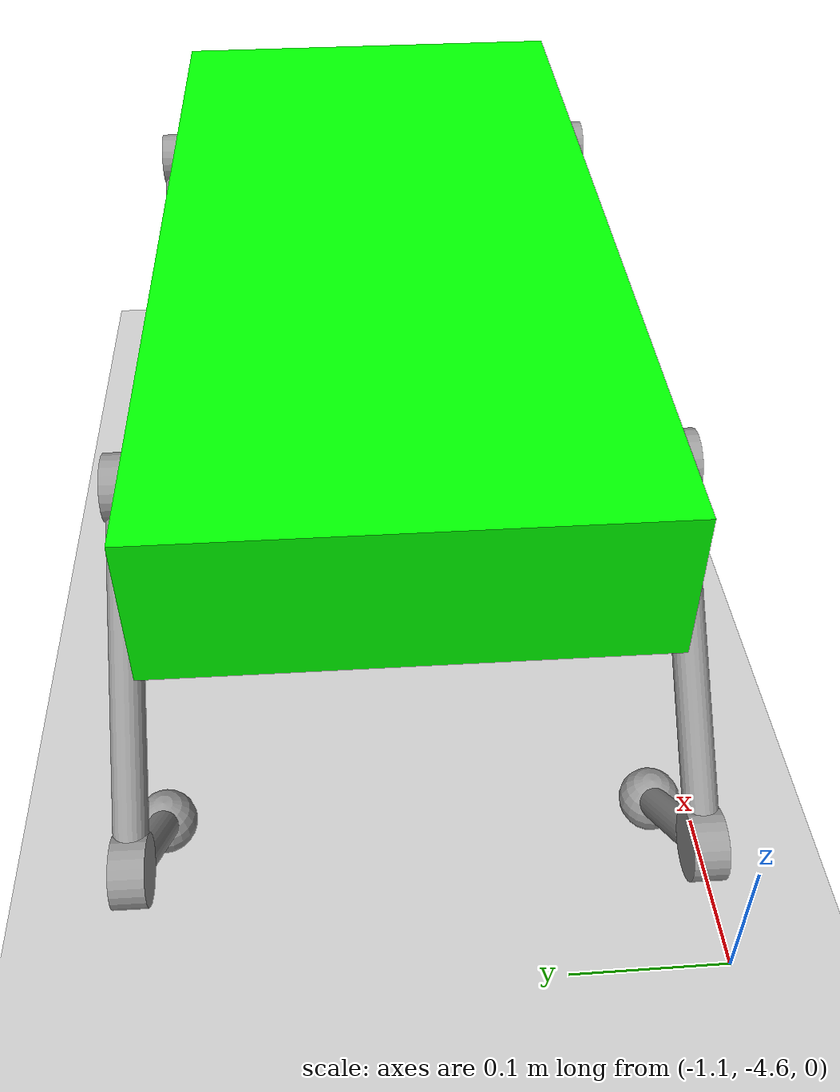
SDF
<sdf version="1.6">
 <world name="default">
  <model name="ground_plane">
   <static>1</static>
   <link name="link">
    <collision name="collision">
     <geometry><plane><normal>0 0 1</normal><size>100 100</size></plane></geometry>
     <surface><friction><ode><mu>100</mu><mu2>50</mu2></ode></friction></surface>
    </collision>
    <visual name="visual">
     <cast_shadows>0</cast_shadows>
     <geometry><plane><normal>0 0 1</normal><size>100 100</size></plane></geometry>
     <material>
      <script><uri>file://media/materials/scripts/gazebo.material</uri><name>Gazebo/Grey</name></script>
     </material>
    </visual>
   </link>
  </model>
  <model name="robodoggi">
   <link name="link_0">
    <pose>3.29895 2.116 0.505494 0 -0 0</pose>
    <inertial>
     <mass>1</mass>
     <inertia>
      <ixx>0.166667</ixx>
      <ixy>0</ixy>
      <ixz>0</ixz>
      <iyy>0.166667</iyy>
      <iyz>0</iyz>
      <izz>0.166667</izz>
     </inertia>
    </inertial>
    <visual name="visual">
     <geometry><box><size>0.6 0.3 0.1</size></box></geometry>
     <material>
      <lighting>1</lighting>
      <script><uri>file://media/materials/scripts/gazebo.material</uri><name>Gazebo/Grey</name></script>
      <shader type="pixel"><normal_map>__default__</normal_map></shader>
      <ambient>0 1 0 1</ambient>
      <diffuse>0.7 0.7 0.7 1</diffuse>
      <specular>0.01 0.01 0.01 1</specular>
      <emissive>0 0 0 1</emissive>
     </material>
    </visual>
    <collision name="collision">
     <geometry><box><size>0.6 0.3 0.1</size></box></geometry>
     <surface>
      <friction>
       <ode><mu>1</mu><mu2>1</mu2><fdir1>0 0 0</fdir1><slip1>0</slip1><slip2>0</slip2></ode>
       <torsional>
        <coefficient>1</coefficient>
        <patch_radius>0</patch_radius>
        <surface_radius>0</surface_radius>
        <use_patch_radius>1</use_patch_radius>
        <ode><slip>0</slip></ode>
       </torsional>
      </friction>
      <bounce><restitution_coefficient>0</restitution_coefficient><threshold>1e+06</threshold></bounce>
      <contact>
       <collide_without_contact>0</collide_without_contact>
       <collide_without_contact_bitmask>1</collide_without_contact_bitmask>
       <collide_bitmask>1</collide_bitmask>
       <ode>
        <soft_cfm>0</soft_cfm>
        <soft_erp>0.2</soft_erp>
        <kp>1e+13</kp>
        <kd>1</kd>
        <max_vel>0.01</max_vel>
        <min_depth>0</min_depth>
       </ode>
       <bullet>
        <split_impulse>1</split_impulse>
        <split_impulse_penetration_threshold>-0.01</split_impulse_penetration_threshold>
        <soft_cfm>0</soft_cfm>
        <soft_erp>0.2</soft_erp>
        <kp>1e+13</kp>
        <kd>1</kd>
       </bullet>
      </contact>
     </surface>
    </collision>
   </link>
   <link name="link_1">
    <pose>3.09895 1.956 0.505494 1.5708 -0 0</pose>
    <inertial>
     <mass>1</mass>
     <inertia><ixx>0.145833</ixx><ixy>0</ixy><ixz>0</ixz><iyy>0.145833</iyy><iyz>0</iyz><izz>0.125</izz></inertia>
    </inertial>
    <visual name="visual">
     <geometry><cylinder><radius>0.02</radius><length>0.02</length></cylinder></geometry>
     <material>
      <lighting>1</lighting>
      <script><uri>file://media/materials/scripts/gazebo.material</uri><name>Gazebo/Grey</name></script>
      <shader type="pixel"><normal_map>__default__</normal_map></shader>
      <ambient>0.3 0.3 0.3 1</ambient>
      <diffuse>0.7 0.7 0.7 1</diffuse>
      <specular>0.01 0.01 0.01 1</specular>
      <emissive>0 0 0 1</emissive>
     </material>
    </visual>
    <collision name="collision">
     <geometry><cylinder><radius>0.02</radius><length>0.02</length></cylinder></geometry>
     <surface>
      <friction>
       <ode><mu>1</mu><mu2>1</mu2><fdir1>0 0 0</fdir1><slip1>0</slip1><slip2>0</slip2></ode>
       <torsional>
        <coefficient>1</coefficient>
        <patch_radius>0</patch_radius>
        <surface_radius>0</surface_radius>
        <use_patch_radius>1</use_patch_radius>
        <ode><slip>0</slip></ode>
       </torsional>
      </friction>
      <bounce><restitution_coefficient>0</restitution_coefficient><threshold>1e+06</threshold></bounce>
      <contact>
       <collide_without_contact>0</collide_without_contact>
       <collide_without_contact_bitmask>1</collide_without_contact_bitmask>
       <collide_bitmask>1</collide_bitmask>
       <ode>
        <soft_cfm>0</soft_cfm>
        <soft_erp>0.2</soft_erp>
        <kp>1e+13</kp>
        <kd>1</kd>
        <max_vel>0.01</max_vel>
        <min_depth>0</min_depth>
       </ode>
       <bullet>
        <split_impulse>1</split_impulse>
        <split_impulse_penetration_threshold>-0.01</split_impulse_penetration_threshold>
        <soft_cfm>0</soft_cfm>
        <soft_erp>0.2</soft_erp>
        <kp>1e+13</kp>
        <kd>1</kd>
       </bullet>
      </contact>
     </surface>
    </collision>
   </link>
   <link name="link_1_clone">
    <pose>2.94624 1.956 0.352783 1.5708 -0 0</pose>
    <inertial>
     <mass>1</mass>
     <inertia><ixx>0.145833</ixx><ixy>0</ixy><ixz>0</ixz><iyy>0.145833</iyy><iyz>0</iyz><izz>0.125</izz></inertia>
    </inertial>
    <visual name="visual">
     <geometry><cylinder><radius>0.02</radius><length>0.02</length></cylinder></geometry>
     <material>
      <lighting>1</lighting>
      <script><uri>file://media/materials/scripts/gazebo.material</uri><name>Gazebo/Grey</name></script>
      <shader type="pixel"><normal_map>__default__</normal_map></shader>
      <ambient>0.3 0.3 0.3 1</ambient>
      <diffuse>0.7 0.7 0.7 1</diffuse>
      <specular>0.01 0.01 0.01 1</specular>
      <emissive>0 0 0 1</emissive>
     </material>
    </visual>
    <collision name="collision">
     <geometry><cylinder><radius>0.02</radius><length>0.02</length></cylinder></geometry>
     <surface>
      <friction>
       <ode><mu>1</mu><mu2>1</mu2><fdir1>0 0 0</fdir1><slip1>0</slip1><slip2>0</slip2></ode>
       <torsional>
        <coefficient>1</coefficient>
        <patch_radius>0</patch_radius>
        <surface_radius>0</surface_radius>
        <use_patch_radius>1</use_patch_radius>
        <ode><slip>0</slip></ode>
       </torsional>
      </friction>
      <bounce><restitution_coefficient>0</restitution_coefficient><threshold>1e+06</threshold></bounce>
      <contact>
       <collide_without_contact>0</collide_without_contact>
       <collide_without_contact_bitmask>1</collide_without_contact_bitmask>
       <collide_bitmask>1</collide_bitmask>
       <ode>
        <soft_cfm>0</soft_cfm>
        <soft_erp>0.2</soft_erp>
        <kp>1e+13</kp>
        <kd>1</kd>
        <max_vel>0.01</max_vel>
        <min_depth>0</min_depth>
       </ode>
       <bullet>
        <split_impulse>1</split_impulse>
        <split_impulse_penetration_threshold>-0.01</split_impulse_penetration_threshold>
        <soft_cfm>0</soft_cfm>
        <soft_erp>0.2</soft_erp>
        <kp>1e+13</kp>
        <kd>1</kd>
       </bullet>
      </contact>
     </surface>
    </collision>
   </link>
   <link name="link_1_clone_0">
    <pose>3.49895 1.956 0.505494 1.5708 -0 0</pose>
    <inertial>
     <mass>1</mass>
     <inertia><ixx>0.145833</ixx><ixy>0</ixy><ixz>0</ixz><iyy>0.145833</iyy><iyz>0</iyz><izz>0.125</izz></inertia>
    </inertial>
    <visual name="visual">
     <geometry><cylinder><radius>0.02</radius><length>0.02</length></cylinder></geometry>
     <material>
      <lighting>1</lighting>
      <script><uri>file://media/materials/scripts/gazebo.material</uri><name>Gazebo/Grey</name></script>
      <shader type="pixel"><normal_map>__default__</normal_map></shader>
      <ambient>0.3 0.3 0.3 1</ambient>
      <diffuse>0.7 0.7 0.7 1</diffuse>
      <specular>0.01 0.01 0.01 1</specular>
      <emissive>0 0 0 1</emissive>
     </material>
    </visual>
    <collision name="collision">
     <geometry><cylinder><radius>0.02</radius><length>0.02</length></cylinder></geometry>
     <surface>
      <friction>
       <ode><mu>1</mu><mu2>1</mu2><fdir1>0 0 0</fdir1><slip1>0</slip1><slip2>0</slip2></ode>
       <torsional>
        <coefficient>1</coefficient>
        <patch_radius>0</patch_radius>
        <surface_radius>0</surface_radius>
        <use_patch_radius>1</use_patch_radius>
        <ode><slip>0</slip></ode>
       </torsional>
      </friction>
      <bounce><restitution_coefficient>0</restitution_coefficient><threshold>1e+06</threshold></bounce>
      <contact>
       <collide_without_contact>0</collide_without_contact>
       <collide_without_contact_bitmask>1</collide_without_contact_bitmask>
       <collide_bitmask>1</collide_bitmask>
       <ode>
        <soft_cfm>0</soft_cfm>
        <soft_erp>0.2</soft_erp>
        <kp>1e+13</kp>
        <kd>1</kd>
        <max_vel>0.01</max_vel>
        <min_depth>0</min_depth>
       </ode>
       <bullet>
        <split_impulse>1</split_impulse>
        <split_impulse_penetration_threshold>-0.01</split_impulse_penetration_threshold>
        <soft_cfm>0</soft_cfm>
        <soft_erp>0.2</soft_erp>
        <kp>1e+13</kp>
        <kd>1</kd>
       </bullet>
      </contact>
     </surface>
    </collision>
   </link>
   <link name="link_1_clone_0_clone">
    <pose>3.49895 2.27601 0.505494 1.5708 -0 0</pose>
    <inertial>
     <mass>1</mass>
     <inertia><ixx>0.145833</ixx><ixy>0</ixy><ixz>0</ixz><iyy>0.145833</iyy><iyz>0</iyz><izz>0.125</izz></inertia>
    </inertial>
    <visual name="visual">
     <geometry><cylinder><radius>0.02</radius><length>0.02</length></cylinder></geometry>
     <material>
      <lighting>1</lighting>
      <script><uri>file://media/materials/scripts/gazebo.material</uri><name>Gazebo/Grey</name></script>
      <shader type="pixel"><normal_map>__default__</normal_map></shader>
      <ambient>0.3 0.3 0.3 1</ambient>
      <diffuse>0.7 0.7 0.7 1</diffuse>
      <specular>0.01 0.01 0.01 1</specular>
      <emissive>0 0 0 1</emissive>
     </material>
    </visual>
    <collision name="collision">
     <geometry><cylinder><radius>0.02</radius><length>0.02</length></cylinder></geometry>
     <surface>
      <friction>
       <ode><mu>1</mu><mu2>1</mu2><fdir1>0 0 0</fdir1><slip1>0</slip1><slip2>0</slip2></ode>
       <torsional>
        <coefficient>1</coefficient>
        <patch_radius>0</patch_radius>
        <surface_radius>0</surface_radius>
        <use_patch_radius>1</use_patch_radius>
        <ode><slip>0</slip></ode>
       </torsional>
      </friction>
      <bounce><restitution_coefficient>0</restitution_coefficient><threshold>1e+06</threshold></bounce>
      <contact>
       <collide_without_contact>0</collide_without_contact>
       <collide_without_contact_bitmask>1</collide_without_contact_bitmask>
       <collide_bitmask>1</collide_bitmask>
       <ode>
        <soft_cfm>0</soft_cfm>
        <soft_erp>0.2</soft_erp>
        <kp>1e+13</kp>
        <kd>1</kd>
        <max_vel>0.01</max_vel>
        <min_depth>0</min_depth>
       </ode>
       <bullet>
        <split_impulse>1</split_impulse>
        <split_impulse_penetration_threshold>-0.01</split_impulse_penetration_threshold>
        <soft_cfm>0</soft_cfm>
        <soft_erp>0.2</soft_erp>
        <kp>1e+13</kp>
        <kd>1</kd>
       </bullet>
      </contact>
     </surface>
    </collision>
   </link>
   <link name="link_1_clone_0_clone_clone">
    <pose>3.34824 2.27601 0.354783 1.5708 -0 0</pose>
    <inertial>
     <mass>1</mass>
     <inertia><ixx>0.145833</ixx><ixy>0</ixy><ixz>0</ixz><iyy>0.145833</iyy><iyz>0</iyz><izz>0.125</izz></inertia>
    </inertial>
    <visual name="visual">
     <geometry><cylinder><radius>0.02</radius><length>0.02</length></cylinder></geometry>
     <material>
      <lighting>1</lighting>
      <script><uri>file://media/materials/scripts/gazebo.material</uri><name>Gazebo/Grey</name></script>
      <shader type="pixel"><normal_map>__default__</normal_map></shader>
      <ambient>0.3 0.3 0.3 1</ambient>
      <diffuse>0.7 0.7 0.7 1</diffuse>
      <specular>0.01 0.01 0.01 1</specular>
      <emissive>0 0 0 1</emissive>
     </material>
    </visual>
    <collision name="collision">
     <geometry><cylinder><radius>0.02</radius><length>0.02</length></cylinder></geometry>
     <surface>
      <friction>
       <ode><mu>1</mu><mu2>1</mu2><fdir1>0 0 0</fdir1><slip1>0</slip1><slip2>0</slip2></ode>
       <torsional>
        <coefficient>1</coefficient>
        <patch_radius>0</patch_radius>
        <surface_radius>0</surface_radius>
        <use_patch_radius>1</use_patch_radius>
        <ode><slip>0</slip></ode>
       </torsional>
      </friction>
      <bounce><restitution_coefficient>0</restitution_coefficient><threshold>1e+06</threshold></bounce>
      <contact>
       <collide_without_contact>0</collide_without_contact>
       <collide_without_contact_bitmask>1</collide_without_contact_bitmask>
       <collide_bitmask>1</collide_bitmask>
       <ode>
        <soft_cfm>0</soft_cfm>
        <soft_erp>0.2</soft_erp>
        <kp>1e+13</kp>
        <kd>1</kd>
        <max_vel>0.01</max_vel>
        <min_depth>0</min_depth>
       </ode>
       <bullet>
        <split_impulse>1</split_impulse>
        <split_impulse_penetration_threshold>-0.01</split_impulse_penetration_threshold>
        <soft_cfm>0</soft_cfm>
        <soft_erp>0.2</soft_erp>
        <kp>1e+13</kp>
        <kd>1</kd>
       </bullet>
      </contact>
     </surface>
    </collision>
   </link>
   <link name="link_1_clone_0_clone_clone_0">
    <pose>3.09895 2.27601 0.505494 1.5708 -0 0</pose>
    <inertial>
     <mass>1</mass>
     <inertia><ixx>0.145833</ixx><ixy>0</ixy><ixz>0</ixz><iyy>0.145833</iyy><iyz>0</iyz><izz>0.125</izz></inertia>
    </inertial>
    <visual name="visual">
     <geometry><cylinder><radius>0.02</radius><length>0.02</length></cylinder></geometry>
     <material>
      <lighting>1</lighting>
      <script><uri>file://media/materials/scripts/gazebo.material</uri><name>Gazebo/Grey</name></script>
      <shader type="pixel"><normal_map>__default__</normal_map></shader>
      <ambient>0.3 0.3 0.3 1</ambient>
      <diffuse>0.7 0.7 0.7 1</diffuse>
      <specular>0.01 0.01 0.01 1</specular>
      <emissive>0 0 0 1</emissive>
     </material>
    </visual>
    <collision name="collision">
     <geometry><cylinder><radius>0.02</radius><length>0.02</length></cylinder></geometry>
     <surface>
      <friction>
       <ode><mu>1</mu><mu2>1</mu2><fdir1>0 0 0</fdir1><slip1>0</slip1><slip2>0</slip2></ode>
       <torsional>
        <coefficient>1</coefficient>
        <patch_radius>0</patch_radius>
        <surface_radius>0</surface_radius>
        <use_patch_radius>1</use_patch_radius>
        <ode><slip>0</slip></ode>
       </torsional>
      </friction>
      <bounce><restitution_coefficient>0</restitution_coefficient><threshold>1e+06</threshold></bounce>
      <contact>
       <collide_without_contact>0</collide_without_contact>
       <collide_without_contact_bitmask>1</collide_without_contact_bitmask>
       <collide_bitmask>1</collide_bitmask>
       <ode>
        <soft_cfm>0</soft_cfm>
        <soft_erp>0.2</soft_erp>
        <kp>1e+13</kp>
        <kd>1</kd>
        <max_vel>0.01</max_vel>
        <min_depth>0</min_depth>
       </ode>
       <bullet>
        <split_impulse>1</split_impulse>
        <split_impulse_penetration_threshold>-0.01</split_impulse_penetration_threshold>
        <soft_cfm>0</soft_cfm>
        <soft_erp>0.2</soft_erp>
        <kp>1e+13</kp>
        <kd>1</kd>
       </bullet>
      </contact>
     </surface>
    </collision>
   </link>
   <link name="link_1_clone_0_clone_clone_clone">
    <pose>2.94824 2.27601 0.354783 1.5708 -0 0</pose>
    <inertial>
     <mass>1</mass>
     <inertia><ixx>0.145833</ixx><ixy>0</ixy><ixz>0</ixz><iyy>0.145833</iyy><iyz>0</iyz><izz>0.125</izz></inertia>
    </inertial>
    <visual name="visual">
     <geometry><cylinder><radius>0.02</radius><length>0.02</length></cylinder></geometry>
     <material>
      <lighting>1</lighting>
      <script><uri>file://media/materials/scripts/gazebo.material</uri><name>Gazebo/Grey</name></script>
      <shader type="pixel"><normal_map>__default__</normal_map></shader>
      <ambient>0.3 0.3 0.3 1</ambient>
      <diffuse>0.7 0.7 0.7 1</diffuse>
      <specular>0.01 0.01 0.01 1</specular>
      <emissive>0 0 0 1</emissive>
     </material>
    </visual>
    <collision name="collision">
     <geometry><cylinder><radius>0.02</radius><length>0.02</length></cylinder></geometry>
     <surface>
      <friction>
       <ode><mu>1</mu><mu2>1</mu2><fdir1>0 0 0</fdir1><slip1>0</slip1><slip2>0</slip2></ode>
       <torsional>
        <coefficient>1</coefficient>
        <patch_radius>0</patch_radius>
        <surface_radius>0</surface_radius>
        <use_patch_radius>1</use_patch_radius>
        <ode><slip>0</slip></ode>
       </torsional>
      </friction>
      <bounce><restitution_coefficient>0</restitution_coefficient><threshold>1e+06</threshold></bounce>
      <contact>
       <collide_without_contact>0</collide_without_contact>
       <collide_without_contact_bitmask>1</collide_without_contact_bitmask>
       <collide_bitmask>1</collide_bitmask>
       <ode>
        <soft_cfm>0</soft_cfm>
        <soft_erp>0.2</soft_erp>
        <kp>1e+13</kp>
        <kd>1</kd>
        <max_vel>0.01</max_vel>
        <min_depth>0</min_depth>
       </ode>
       <bullet>
        <split_impulse>1</split_impulse>
        <split_impulse_penetration_threshold>-0.01</split_impulse_penetration_threshold>
        <soft_cfm>0</soft_cfm>
        <soft_erp>0.2</soft_erp>
        <kp>1e+13</kp>
        <kd>1</kd>
       </bullet>
      </contact>
     </surface>
    </collision>
   </link>
   <link name="link_1_clone_clone">
    <pose>3.34824 1.956 0.354783 1.5708 -0 0</pose>
    <inertial>
     <mass>1</mass>
     <inertia><ixx>0.145833</ixx><ixy>0</ixy><ixz>0</ixz><iyy>0.145833</iyy><iyz>0</iyz><izz>0.125</izz></inertia>
    </inertial>
    <visual name="visual">
     <geometry><cylinder><radius>0.02</radius><length>0.02</length></cylinder></geometry>
     <material>
      <lighting>1</lighting>
      <script><uri>file://media/materials/scripts/gazebo.material</uri><name>Gazebo/Grey</name></script>
      <shader type="pixel"><normal_map>__default__</normal_map></shader>
      <ambient>0.3 0.3 0.3 1</ambient>
      <diffuse>0.7 0.7 0.7 1</diffuse>
      <specular>0.01 0.01 0.01 1</specular>
      <emissive>0 0 0 1</emissive>
     </material>
    </visual>
    <collision name="collision">
     <geometry><cylinder><radius>0.02</radius><length>0.02</length></cylinder></geometry>
     <surface>
      <friction>
       <ode><mu>1</mu><mu2>1</mu2><fdir1>0 0 0</fdir1><slip1>0</slip1><slip2>0</slip2></ode>
       <torsional>
        <coefficient>1</coefficient>
        <patch_radius>0</patch_radius>
        <surface_radius>0</surface_radius>
        <use_patch_radius>1</use_patch_radius>
        <ode><slip>0</slip></ode>
       </torsional>
      </friction>
      <bounce><restitution_coefficient>0</restitution_coefficient><threshold>1e+06</threshold></bounce>
      <contact>
       <collide_without_contact>0</collide_without_contact>
       <collide_without_contact_bitmask>1</collide_without_contact_bitmask>
       <collide_bitmask>1</collide_bitmask>
       <ode>
        <soft_cfm>0</soft_cfm>
        <soft_erp>0.2</soft_erp>
        <kp>1e+13</kp>
        <kd>1</kd>
        <max_vel>0.01</max_vel>
        <min_depth>0</min_depth>
       </ode>
       <bullet>
        <split_impulse>1</split_impulse>
        <split_impulse_penetration_threshold>-0.01</split_impulse_penetration_threshold>
        <soft_cfm>0</soft_cfm>
        <soft_erp>0.2</soft_erp>
        <kp>1e+13</kp>
        <kd>1</kd>
       </bullet>
      </contact>
     </surface>
    </collision>
   </link>
   <link name="link_2">
    <pose>3.01695 1.956 0.423494 0 0.785398 -1e-06</pose>
    <inertial>
     <mass>1</mass>
     <inertia><ixx>0.145833</ixx><ixy>0</ixy><ixz>0</ixz><iyy>0.145833</iyy><iyz>0</iyz><izz>0.125</izz></inertia>
    </inertial>
    <visual name="visual">
     <geometry><cylinder><radius>0.01</radius><length>0.2</length></cylinder></geometry>
     <material>
      <lighting>1</lighting>
      <script><uri>file://media/materials/scripts/gazebo.material</uri><name>Gazebo/Grey</name></script>
      <shader type="pixel"><normal_map>__default__</normal_map></shader>
      <ambient>0.3 0.3 0.3 1</ambient>
      <diffuse>0.7 0.7 0.7 1</diffuse>
      <specular>0.01 0.01 0.01 1</specular>
      <emissive>0 0 0 1</emissive>
     </material>
    </visual>
    <collision name="collision">
     <geometry><cylinder><radius>0.01</radius><length>0.2</length></cylinder></geometry>
     <surface>
      <friction>
       <ode><mu>1</mu><mu2>1</mu2><fdir1>0 0 0</fdir1><slip1>0</slip1><slip2>0</slip2></ode>
       <torsional>
        <coefficient>1</coefficient>
        <patch_radius>0</patch_radius>
        <surface_radius>0</surface_radius>
        <use_patch_radius>1</use_patch_radius>
        <ode><slip>0</slip></ode>
       </torsional>
      </friction>
      <bounce><restitution_coefficient>0</restitution_coefficient><threshold>1e+06</threshold></bounce>
      <contact>
       <collide_without_contact>0</collide_without_contact>
       <collide_without_contact_bitmask>1</collide_without_contact_bitmask>
       <collide_bitmask>1</collide_bitmask>
       <ode>
        <soft_cfm>0</soft_cfm>
        <soft_erp>0.2</soft_erp>
        <kp>1e+13</kp>
        <kd>1</kd>
        <max_vel>0.01</max_vel>
        <min_depth>0</min_depth>
       </ode>
       <bullet>
        <split_impulse>1</split_impulse>
        <split_impulse_penetration_threshold>-0.01</split_impulse_penetration_threshold>
        <soft_cfm>0</soft_cfm>
        <soft_erp>0.2</soft_erp>
        <kp>1e+13</kp>
        <kd>1</kd>
       </bullet>
      </contact>
     </surface>
    </collision>
   </link>
   <link name="link_2_clone">
    <pose>2.99624 1.956 0.302783 -1e-06 -0.785398 1e-06</pose>
    <inertial>
     <mass>1</mass>
     <inertia><ixx>0.145833</ixx><ixy>0</ixy><ixz>0</ixz><iyy>0.145833</iyy><iyz>0</iyz><izz>0.125</izz></inertia>
    </inertial>
    <visual name="visual">
     <geometry><cylinder><radius>0.01</radius><length>0.1</length></cylinder></geometry>
     <material>
      <lighting>1</lighting>
      <script><uri>file://media/materials/scripts/gazebo.material</uri><name>Gazebo/Grey</name></script>
      <shader type="pixel"><normal_map>__default__</normal_map></shader>
      <ambient>0.3 0.3 0.3 1</ambient>
      <diffuse>0.7 0.7 0.7 1</diffuse>
      <specular>0.01 0.01 0.01 1</specular>
      <emissive>0 0 0 1</emissive>
     </material>
    </visual>
    <collision name="collision">
     <geometry><cylinder><radius>0.01</radius><length>0.1</length></cylinder></geometry>
     <surface>
      <friction>
       <ode><mu>1</mu><mu2>1</mu2><fdir1>0 0 0</fdir1><slip1>0</slip1><slip2>0</slip2></ode>
       <torsional>
        <coefficient>1</coefficient>
        <patch_radius>0</patch_radius>
        <surface_radius>0</surface_radius>
        <use_patch_radius>1</use_patch_radius>
        <ode><slip>0</slip></ode>
       </torsional>
      </friction>
      <bounce><restitution_coefficient>0</restitution_coefficient><threshold>1e+06</threshold></bounce>
      <contact>
       <collide_without_contact>0</collide_without_contact>
       <collide_without_contact_bitmask>1</collide_without_contact_bitmask>
       <collide_bitmask>1</collide_bitmask>
       <ode>
        <soft_cfm>0</soft_cfm>
        <soft_erp>0.2</soft_erp>
        <kp>1e+13</kp>
        <kd>1</kd>
        <max_vel>0.01</max_vel>
        <min_depth>0</min_depth>
       </ode>
       <bullet>
        <split_impulse>1</split_impulse>
        <split_impulse_penetration_threshold>-0.01</split_impulse_penetration_threshold>
        <soft_cfm>0</soft_cfm>
        <soft_erp>0.2</soft_erp>
        <kp>1e+13</kp>
        <kd>1</kd>
       </bullet>
      </contact>
     </surface>
    </collision>
   </link>
   <link name="link_2_clone_0">
    <pose>3.41895 1.956 0.425494 1e-06 0.785398 -1e-06</pose>
    <inertial>
     <mass>1</mass>
     <inertia><ixx>0.145833</ixx><ixy>0</ixy><ixz>0</ixz><iyy>0.145833</iyy><iyz>0</iyz><izz>0.125</izz></inertia>
    </inertial>
    <visual name="visual">
     <geometry><cylinder><radius>0.01</radius><length>0.2</length></cylinder></geometry>
     <material>
      <lighting>1</lighting>
      <script><uri>file://media/materials/scripts/gazebo.material</uri><name>Gazebo/Grey</name></script>
      <shader type="pixel"><normal_map>__default__</normal_map></shader>
      <ambient>0.3 0.3 0.3 1</ambient>
      <diffuse>0.7 0.7 0.7 1</diffuse>
      <specular>0.01 0.01 0.01 1</specular>
      <emissive>0 0 0 1</emissive>
     </material>
    </visual>
    <collision name="collision">
     <geometry><cylinder><radius>0.01</radius><length>0.2</length></cylinder></geometry>
     <surface>
      <friction>
       <ode><mu>1</mu><mu2>1</mu2><fdir1>0 0 0</fdir1><slip1>0</slip1><slip2>0</slip2></ode>
       <torsional>
        <coefficient>1</coefficient>
        <patch_radius>0</patch_radius>
        <surface_radius>0</surface_radius>
        <use_patch_radius>1</use_patch_radius>
        <ode><slip>0</slip></ode>
       </torsional>
      </friction>
      <bounce><restitution_coefficient>0</restitution_coefficient><threshold>1e+06</threshold></bounce>
      <contact>
       <collide_without_contact>0</collide_without_contact>
       <collide_without_contact_bitmask>1</collide_without_contact_bitmask>
       <collide_bitmask>1</collide_bitmask>
       <ode>
        <soft_cfm>0</soft_cfm>
        <soft_erp>0.2</soft_erp>
        <kp>1e+13</kp>
        <kd>1</kd>
        <max_vel>0.01</max_vel>
        <min_depth>0</min_depth>
       </ode>
       <bullet>
        <split_impulse>1</split_impulse>
        <split_impulse_penetration_threshold>-0.01</split_impulse_penetration_threshold>
        <soft_cfm>0</soft_cfm>
        <soft_erp>0.2</soft_erp>
        <kp>1e+13</kp>
        <kd>1</kd>
       </bullet>
      </contact>
     </surface>
    </collision>
   </link>
   <link name="link_2_clone_0_clone">
    <pose>3.41895 2.27601 0.425494 2e-06 0.785398 -1e-06</pose>
    <inertial>
     <mass>1</mass>
     <inertia><ixx>0.145833</ixx><ixy>0</ixy><ixz>0</ixz><iyy>0.145833</iyy><iyz>0</iyz><izz>0.125</izz></inertia>
    </inertial>
    <visual name="visual">
     <geometry><cylinder><radius>0.01</radius><length>0.2</length></cylinder></geometry>
     <material>
      <lighting>1</lighting>
      <script><uri>file://media/materials/scripts/gazebo.material</uri><name>Gazebo/Grey</name></script>
      <shader type="pixel"><normal_map>__default__</normal_map></shader>
      <ambient>0.3 0.3 0.3 1</ambient>
      <diffuse>0.7 0.7 0.7 1</diffuse>
      <specular>0.01 0.01 0.01 1</specular>
      <emissive>0 0 0 1</emissive>
     </material>
    </visual>
    <collision name="collision">
     <geometry><cylinder><radius>0.01</radius><length>0.2</length></cylinder></geometry>
     <surface>
      <friction>
       <ode><mu>1</mu><mu2>1</mu2><fdir1>0 0 0</fdir1><slip1>0</slip1><slip2>0</slip2></ode>
       <torsional>
        <coefficient>1</coefficient>
        <patch_radius>0</patch_radius>
        <surface_radius>0</surface_radius>
        <use_patch_radius>1</use_patch_radius>
        <ode><slip>0</slip></ode>
       </torsional>
      </friction>
      <bounce><restitution_coefficient>0</restitution_coefficient><threshold>1e+06</threshold></bounce>
      <contact>
       <collide_without_contact>0</collide_without_contact>
       <collide_without_contact_bitmask>1</collide_without_contact_bitmask>
       <collide_bitmask>1</collide_bitmask>
       <ode>
        <soft_cfm>0</soft_cfm>
        <soft_erp>0.2</soft_erp>
        <kp>1e+13</kp>
        <kd>1</kd>
        <max_vel>0.01</max_vel>
        <min_depth>0</min_depth>
       </ode>
       <bullet>
        <split_impulse>1</split_impulse>
        <split_impulse_penetration_threshold>-0.01</split_impulse_penetration_threshold>
        <soft_cfm>0</soft_cfm>
        <soft_erp>0.2</soft_erp>
        <kp>1e+13</kp>
        <kd>1</kd>
       </bullet>
      </contact>
     </surface>
    </collision>
   </link>
   <link name="link_2_clone_0_clone_clone">
    <pose>3.01895 2.27601 0.425494 3e-06 0.785398 -1e-06</pose>
    <inertial>
     <mass>1</mass>
     <inertia><ixx>0.145833</ixx><ixy>0</ixy><ixz>0</ixz><iyy>0.145833</iyy><iyz>0</iyz><izz>0.125</izz></inertia>
    </inertial>
    <visual name="visual">
     <geometry><cylinder><radius>0.01</radius><length>0.2</length></cylinder></geometry>
     <material>
      <lighting>1</lighting>
      <script><uri>file://media/materials/scripts/gazebo.material</uri><name>Gazebo/Grey</name></script>
      <shader type="pixel"><normal_map>__default__</normal_map></shader>
      <ambient>0.3 0.3 0.3 1</ambient>
      <diffuse>0.7 0.7 0.7 1</diffuse>
      <specular>0.01 0.01 0.01 1</specular>
      <emissive>0 0 0 1</emissive>
     </material>
    </visual>
    <collision name="collision">
     <geometry><cylinder><radius>0.01</radius><length>0.2</length></cylinder></geometry>
     <surface>
      <friction>
       <ode><mu>1</mu><mu2>1</mu2><fdir1>0 0 0</fdir1><slip1>0</slip1><slip2>0</slip2></ode>
       <torsional>
        <coefficient>1</coefficient>
        <patch_radius>0</patch_radius>
        <surface_radius>0</surface_radius>
        <use_patch_radius>1</use_patch_radius>
        <ode><slip>0</slip></ode>
       </torsional>
      </friction>
      <bounce><restitution_coefficient>0</restitution_coefficient><threshold>1e+06</threshold></bounce>
      <contact>
       <collide_without_contact>0</collide_without_contact>
       <collide_without_contact_bitmask>1</collide_without_contact_bitmask>
       <collide_bitmask>1</collide_bitmask>
       <ode>
        <soft_cfm>0</soft_cfm>
        <soft_erp>0.2</soft_erp>
        <kp>1e+13</kp>
        <kd>1</kd>
        <max_vel>0.01</max_vel>
        <min_depth>0</min_depth>
       </ode>
       <bullet>
        <split_impulse>1</split_impulse>
        <split_impulse_penetration_threshold>-0.01</split_impulse_penetration_threshold>
        <soft_cfm>0</soft_cfm>
        <soft_erp>0.2</soft_erp>
        <kp>1e+13</kp>
        <kd>1</kd>
       </bullet>
      </contact>
     </surface>
    </collision>
   </link>
   <link name="link_2_clone_clone">
    <pose>3.39824 1.956 0.304783 -1e-06 -0.785398 2e-06</pose>
    <inertial>
     <mass>1</mass>
     <inertia><ixx>0.145833</ixx><ixy>0</ixy><ixz>0</ixz><iyy>0.145833</iyy><iyz>0</iyz><izz>0.125</izz></inertia>
    </inertial>
    <visual name="visual">
     <geometry><cylinder><radius>0.01</radius><length>0.1</length></cylinder></geometry>
     <material>
      <lighting>1</lighting>
      <script><uri>file://media/materials/scripts/gazebo.material</uri><name>Gazebo/Grey</name></script>
      <shader type="pixel"><normal_map>__default__</normal_map></shader>
      <ambient>0.3 0.3 0.3 1</ambient>
      <diffuse>0.7 0.7 0.7 1</diffuse>
      <specular>0.01 0.01 0.01 1</specular>
      <emissive>0 0 0 1</emissive>
     </material>
    </visual>
    <collision name="collision">
     <geometry><cylinder><radius>0.01</radius><length>0.1</length></cylinder></geometry>
     <surface>
      <friction>
       <ode><mu>1</mu><mu2>1</mu2><fdir1>0 0 0</fdir1><slip1>0</slip1><slip2>0</slip2></ode>
       <torsional>
        <coefficient>1</coefficient>
        <patch_radius>0</patch_radius>
        <surface_radius>0</surface_radius>
        <use_patch_radius>1</use_patch_radius>
        <ode><slip>0</slip></ode>
       </torsional>
      </friction>
      <bounce><restitution_coefficient>0</restitution_coefficient><threshold>1e+06</threshold></bounce>
      <contact>
       <collide_without_contact>0</collide_without_contact>
       <collide_without_contact_bitmask>1</collide_without_contact_bitmask>
       <collide_bitmask>1</collide_bitmask>
       <ode>
        <soft_cfm>0</soft_cfm>
        <soft_erp>0.2</soft_erp>
        <kp>1e+13</kp>
        <kd>1</kd>
        <max_vel>0.01</max_vel>
        <min_depth>0</min_depth>
       </ode>
       <bullet>
        <split_impulse>1</split_impulse>
        <split_impulse_penetration_threshold>-0.01</split_impulse_penetration_threshold>
        <soft_cfm>0</soft_cfm>
        <soft_erp>0.2</soft_erp>
        <kp>1e+13</kp>
        <kd>1</kd>
       </bullet>
      </contact>
     </surface>
    </collision>
   </link>
   <link name="link_2_clone_clone_clone">
    <pose>3.39824 2.27601 0.304783 -1e-06 -0.785398 2e-06</pose>
    <inertial>
     <mass>1</mass>
     <inertia><ixx>0.145833</ixx><ixy>0</ixy><ixz>0</ixz><iyy>0.145833</iyy><iyz>0</iyz><izz>0.125</izz></inertia>
    </inertial>
    <visual name="visual">
     <geometry><cylinder><radius>0.01</radius><length>0.1</length></cylinder></geometry>
     <material>
      <lighting>1</lighting>
      <script><uri>file://media/materials/scripts/gazebo.material</uri><name>Gazebo/Grey</name></script>
      <shader type="pixel"><normal_map>__default__</normal_map></shader>
      <ambient>0.3 0.3 0.3 1</ambient>
      <diffuse>0.7 0.7 0.7 1</diffuse>
      <specular>0.01 0.01 0.01 1</specular>
      <emissive>0 0 0 1</emissive>
     </material>
    </visual>
    <collision name="collision">
     <geometry><cylinder><radius>0.01</radius><length>0.1</length></cylinder></geometry>
     <surface>
      <friction>
       <ode><mu>1</mu><mu2>1</mu2><fdir1>0 0 0</fdir1><slip1>0</slip1><slip2>0</slip2></ode>
       <torsional>
        <coefficient>1</coefficient>
        <patch_radius>0</patch_radius>
        <surface_radius>0</surface_radius>
        <use_patch_radius>1</use_patch_radius>
        <ode><slip>0</slip></ode>
       </torsional>
      </friction>
      <bounce><restitution_coefficient>0</restitution_coefficient><threshold>1e+06</threshold></bounce>
      <contact>
       <collide_without_contact>0</collide_without_contact>
       <collide_without_contact_bitmask>1</collide_without_contact_bitmask>
       <collide_bitmask>1</collide_bitmask>
       <ode>
        <soft_cfm>0</soft_cfm>
        <soft_erp>0.2</soft_erp>
        <kp>1e+13</kp>
        <kd>1</kd>
        <max_vel>0.01</max_vel>
        <min_depth>0</min_depth>
       </ode>
       <bullet>
        <split_impulse>1</split_impulse>
        <split_impulse_penetration_threshold>-0.01</split_impulse_penetration_threshold>
        <soft_cfm>0</soft_cfm>
        <soft_erp>0.2</soft_erp>
        <kp>1e+13</kp>
        <kd>1</kd>
       </bullet>
      </contact>
     </surface>
    </collision>
   </link>
   <link name="link_2_clone_clone_clone_clone">
    <pose>2.99824 2.27601 0.304783 -1e-06 -0.785398 2e-06</pose>
    <inertial>
     <mass>1</mass>
     <inertia><ixx>0.145833</ixx><ixy>0</ixy><ixz>0</ixz><iyy>0.145833</iyy><iyz>0</iyz><izz>0.125</izz></inertia>
    </inertial>
    <visual name="visual">
     <geometry><cylinder><radius>0.01</radius><length>0.1</length></cylinder></geometry>
     <material>
      <lighting>1</lighting>
      <script><uri>file://media/materials/scripts/gazebo.material</uri><name>Gazebo/Grey</name></script>
      <shader type="pixel"><normal_map>__default__</normal_map></shader>
      <ambient>0.3 0.3 0.3 1</ambient>
      <diffuse>0.7 0.7 0.7 1</diffuse>
      <specular>0.01 0.01 0.01 1</specular>
      <emissive>0 0 0 1</emissive>
     </material>
    </visual>
    <collision name="collision">
     <geometry><cylinder><radius>0.01</radius><length>0.1</length></cylinder></geometry>
     <surface>
      <friction>
       <ode><mu>1</mu><mu2>1</mu2><fdir1>0 0 0</fdir1><slip1>0</slip1><slip2>0</slip2></ode>
       <torsional>
        <coefficient>1</coefficient>
        <patch_radius>0</patch_radius>
        <surface_radius>0</surface_radius>
        <use_patch_radius>1</use_patch_radius>
        <ode><slip>0</slip></ode>
       </torsional>
      </friction>
      <bounce><restitution_coefficient>0</restitution_coefficient><threshold>1e+06</threshold></bounce>
      <contact>
       <collide_without_contact>0</collide_without_contact>
       <collide_without_contact_bitmask>1</collide_without_contact_bitmask>
       <collide_bitmask>1</collide_bitmask>
       <ode>
        <soft_cfm>0</soft_cfm>
        <soft_erp>0.2</soft_erp>
        <kp>1e+13</kp>
        <kd>1</kd>
        <max_vel>0.01</max_vel>
        <min_depth>0</min_depth>
       </ode>
       <bullet>
        <split_impulse>1</split_impulse>
        <split_impulse_penetration_threshold>-0.01</split_impulse_penetration_threshold>
        <soft_cfm>0</soft_cfm>
        <soft_erp>0.2</soft_erp>
        <kp>1e+13</kp>
        <kd>1</kd>
       </bullet>
      </contact>
     </surface>
    </collision>
   </link>
   <link name="link_3">
    <pose>3.03866 1.956 0.260357 0 -0 0</pose>
    <inertial>
     <mass>1</mass>
     <inertia><ixx>0.1</ixx><ixy>0</ixy><ixz>0</ixz><iyy>0.1</iyy><iyz>0</iyz><izz>0.1</izz></inertia>
    </inertial>
    <visual name="visual">
     <geometry><sphere><radius>0.02</radius></sphere></geometry>
     <material>
      <lighting>1</lighting>
      <script><uri>file://media/materials/scripts/gazebo.material</uri><name>Gazebo/Grey</name></script>
      <shader type="pixel"><normal_map>__default__</normal_map></shader>
      <ambient>0.3 0.3 0.3 1</ambient>
      <diffuse>0.7 0.7 0.7 1</diffuse>
      <specular>0.01 0.01 0.01 1</specular>
      <emissive>0 0 0 1</emissive>
     </material>
    </visual>
    <collision name="collision">
     <geometry><sphere><radius>0.02</radius></sphere></geometry>
     <surface>
      <friction>
       <ode><mu>1</mu><mu2>1</mu2><fdir1>0 0 0</fdir1><slip1>0</slip1><slip2>0</slip2></ode>
       <torsional>
        <coefficient>1</coefficient>
        <patch_radius>0</patch_radius>
        <surface_radius>0</surface_radius>
        <use_patch_radius>1</use_patch_radius>
        <ode><slip>0</slip></ode>
       </torsional>
      </friction>
      <bounce><restitution_coefficient>0</restitution_coefficient><threshold>1e+06</threshold></bounce>
      <contact>
       <collide_without_contact>0</collide_without_contact>
       <collide_without_contact_bitmask>1</collide_without_contact_bitmask>
       <collide_bitmask>1</collide_bitmask>
       <ode>
        <soft_cfm>0</soft_cfm>
        <soft_erp>0.2</soft_erp>
        <kp>1e+13</kp>
        <kd>1</kd>
        <max_vel>0.01</max_vel>
        <min_depth>0</min_depth>
       </ode>
       <bullet>
        <split_impulse>1</split_impulse>
        <split_impulse_penetration_threshold>-0.01</split_impulse_penetration_threshold>
        <soft_cfm>0</soft_cfm>
        <soft_erp>0.2</soft_erp>
        <kp>1e+13</kp>
        <kd>1</kd>
       </bullet>
      </contact>
     </surface>
    </collision>
   </link>
   <link name="link_3_clone">
    <pose>3.44067 1.956 0.262357 0 -0 0</pose>
    <inertial>
     <mass>1</mass>
     <inertia><ixx>0.1</ixx><ixy>0</ixy><ixz>0</ixz><iyy>0.1</iyy><iyz>0</iyz><izz>0.1</izz></inertia>
    </inertial>
    <visual name="visual">
     <geometry><sphere><radius>0.02</radius></sphere></geometry>
     <material>
      <lighting>1</lighting>
      <script><uri>file://media/materials/scripts/gazebo.material</uri><name>Gazebo/Grey</name></script>
      <shader type="pixel"><normal_map>__default__</normal_map></shader>
      <ambient>0.3 0.3 0.3 1</ambient>
      <diffuse>0.7 0.7 0.7 1</diffuse>
      <specular>0.01 0.01 0.01 1</specular>
      <emissive>0 0 0 1</emissive>
     </material>
    </visual>
    <collision name="collision">
     <geometry><sphere><radius>0.02</radius></sphere></geometry>
     <surface>
      <friction>
       <ode><mu>1</mu><mu2>1</mu2><fdir1>0 0 0</fdir1><slip1>0</slip1><slip2>0</slip2></ode>
       <torsional>
        <coefficient>1</coefficient>
        <patch_radius>0</patch_radius>
        <surface_radius>0</surface_radius>
        <use_patch_radius>1</use_patch_radius>
        <ode><slip>0</slip></ode>
       </torsional>
      </friction>
      <bounce><restitution_coefficient>0</restitution_coefficient><threshold>1e+06</threshold></bounce>
      <contact>
       <collide_without_contact>0</collide_without_contact>
       <collide_without_contact_bitmask>1</collide_without_contact_bitmask>
       <collide_bitmask>1</collide_bitmask>
       <ode>
        <soft_cfm>0</soft_cfm>
        <soft_erp>0.2</soft_erp>
        <kp>1e+13</kp>
        <kd>1</kd>
        <max_vel>0.01</max_vel>
        <min_depth>0</min_depth>
       </ode>
       <bullet>
        <split_impulse>1</split_impulse>
        <split_impulse_penetration_threshold>-0.01</split_impulse_penetration_threshold>
        <soft_cfm>0</soft_cfm>
        <soft_erp>0.2</soft_erp>
        <kp>1e+13</kp>
        <kd>1</kd>
       </bullet>
      </contact>
     </surface>
    </collision>
   </link>
   <link name="link_3_clone_clone">
    <pose>3.44067 2.27601 0.262357 0 -0 0</pose>
    <inertial>
     <mass>1</mass>
     <inertia><ixx>0.1</ixx><ixy>0</ixy><ixz>0</ixz><iyy>0.1</iyy><iyz>0</iyz><izz>0.1</izz></inertia>
    </inertial>
    <visual name="visual">
     <geometry><sphere><radius>0.02</radius></sphere></geometry>
     <material>
      <lighting>1</lighting>
      <script><uri>file://media/materials/scripts/gazebo.material</uri><name>Gazebo/Grey</name></script>
      <shader type="pixel"><normal_map>__default__</normal_map></shader>
      <ambient>0.3 0.3 0.3 1</ambient>
      <diffuse>0.7 0.7 0.7 1</diffuse>
      <specular>0.01 0.01 0.01 1</specular>
      <emissive>0 0 0 1</emissive>
     </material>
    </visual>
    <collision name="collision">
     <geometry><sphere><radius>0.02</radius></sphere></geometry>
     <surface>
      <friction>
       <ode><mu>1</mu><mu2>1</mu2><fdir1>0 0 0</fdir1><slip1>0</slip1><slip2>0</slip2></ode>
       <torsional>
        <coefficient>1</coefficient>
        <patch_radius>0</patch_radius>
        <surface_radius>0</surface_radius>
        <use_patch_radius>1</use_patch_radius>
        <ode><slip>0</slip></ode>
       </torsional>
      </friction>
      <bounce><restitution_coefficient>0</restitution_coefficient><threshold>1e+06</threshold></bounce>
      <contact>
       <collide_without_contact>0</collide_without_contact>
       <collide_without_contact_bitmask>1</collide_without_contact_bitmask>
       <collide_bitmask>1</collide_bitmask>
       <ode>
        <soft_cfm>0</soft_cfm>
        <soft_erp>0.2</soft_erp>
        <kp>1e+13</kp>
        <kd>1</kd>
        <max_vel>0.01</max_vel>
        <min_depth>0</min_depth>
       </ode>
       <bullet>
        <split_impulse>1</split_impulse>
        <split_impulse_penetration_threshold>-0.01</split_impulse_penetration_threshold>
        <soft_cfm>0</soft_cfm>
        <soft_erp>0.2</soft_erp>
        <kp>1e+13</kp>
        <kd>1</kd>
       </bullet>
      </contact>
     </surface>
    </collision>
   </link>
   <link name="link_3_clone_clone_clone">
    <pose>3.04066 2.27601 0.262357 0 -0 0</pose>
    <inertial>
     <mass>1</mass>
     <inertia><ixx>0.1</ixx><ixy>0</ixy><ixz>0</ixz><iyy>0.1</iyy><iyz>0</iyz><izz>0.1</izz></inertia>
    </inertial>
    <visual name="visual">
     <geometry><sphere><radius>0.02</radius></sphere></geometry>
     <material>
      <lighting>1</lighting>
      <script><uri>file://media/materials/scripts/gazebo.material</uri><name>Gazebo/Grey</name></script>
      <shader type="pixel"><normal_map>__default__</normal_map></shader>
      <ambient>0.3 0.3 0.3 1</ambient>
      <diffuse>0.7 0.7 0.7 1</diffuse>
      <specular>0.01 0.01 0.01 1</specular>
      <emissive>0 0 0 1</emissive>
     </material>
    </visual>
    <collision name="collision">
     <geometry><sphere><radius>0.02</radius></sphere></geometry>
     <surface>
      <friction>
       <ode><mu>1</mu><mu2>1</mu2><fdir1>0 0 0</fdir1><slip1>0</slip1><slip2>0</slip2></ode>
       <torsional>
        <coefficient>1</coefficient>
        <patch_radius>0</patch_radius>
        <surface_radius>0</surface_radius>
        <use_patch_radius>1</use_patch_radius>
        <ode><slip>0</slip></ode>
       </torsional>
      </friction>
      <bounce><restitution_coefficient>0</restitution_coefficient><threshold>1e+06</threshold></bounce>
      <contact>
       <collide_without_contact>0</collide_without_contact>
       <collide_without_contact_bitmask>1</collide_without_contact_bitmask>
       <collide_bitmask>1</collide_bitmask>
       <ode>
        <soft_cfm>0</soft_cfm>
        <soft_erp>0.2</soft_erp>
        <kp>1e+13</kp>
        <kd>1</kd>
        <max_vel>0.01</max_vel>
        <min_depth>0</min_depth>
       </ode>
       <bullet>
        <split_impulse>1</split_impulse>
        <split_impulse_penetration_threshold>-0.01</split_impulse_penetration_threshold>
        <soft_cfm>0</soft_cfm>
        <soft_erp>0.2</soft_erp>
        <kp>1e+13</kp>
        <kd>1</kd>
       </bullet>
      </contact>
     </surface>
    </collision>
   </link>
   <joint name="link_0_JOINT_0" type="fixed">
    <parent>link_0</parent>
    <child>link_1</child>
    <physics>
     <ode><limit><cfm>0</cfm><erp>0.2</erp></limit><suspension><cfm>0</cfm><erp>0.2</erp></suspension></ode>
    </physics>
   </joint>
   <joint name="link_0_JOINT_15" type="fixed">
    <parent>link_0</parent>
    <child>link_1_clone_0_clone</child>
    <physics>
     <ode><limit><cfm>0</cfm><erp>0.2</erp></limit><suspension><cfm>0</cfm><erp>0.2</erp></suspension></ode>
    </physics>
   </joint>
   <joint name="link_0_JOINT_20" type="fixed">
    <parent>link_0</parent>
    <child>link_1_clone_0_clone_clone_0</child>
    <physics>
     <ode><limit><cfm>0</cfm><erp>0.2</erp></limit><suspension><cfm>0</cfm><erp>0.2</erp></suspension></ode>
    </physics>
   </joint>
   <joint name="link_0_JOINT_9" type="fixed">
    <parent>link_0</parent>
    <child>link_1_clone_0</child>
    <physics>
     <ode><limit><cfm>0</cfm><erp>0.2</erp></limit><suspension><cfm>0</cfm><erp>0.2</erp></suspension></ode>
    </physics>
   </joint>
   <joint name="link_1_JOINT_4" type="fixed">
    <parent>link_1</parent>
    <child>link_2</child>
    <physics>
     <ode><limit><cfm>0</cfm><erp>0.2</erp></limit><suspension><cfm>0</cfm><erp>0.2</erp></suspension></ode>
    </physics>
   </joint>
   <joint name="link_1_clone_0_JOINT_10" type="fixed">
    <parent>link_1_clone_0</parent>
    <child>link_2_clone_0</child>
    <physics>
     <ode><limit><cfm>0</cfm><erp>0.2</erp></limit><suspension><cfm>0</cfm><erp>0.2</erp></suspension></ode>
    </physics>
   </joint>
   <joint name="link_1_clone_0_clone_JOINT_16" type="fixed">
    <parent>link_1_clone_0_clone</parent>
    <child>link_2_clone_0_clone</child>
    <physics>
     <ode><limit><cfm>0</cfm><erp>0.2</erp></limit><suspension><cfm>0</cfm><erp>0.2</erp></suspension></ode>
    </physics>
   </joint>
   <joint name="link_1_clone_0_clone_clone_0_JOINT_21" type="fixed">
    <parent>link_1_clone_0_clone_clone_0</parent>
    <child>link_2_clone_0_clone_clone</child>
    <physics>
     <ode><limit><cfm>0</cfm><erp>0.2</erp></limit><suspension><cfm>0</cfm><erp>0.2</erp></suspension></ode>
    </physics>
   </joint>
   <joint name="link_1_clone_0_clone_clone_JOINT_18" type="fixed">
    <parent>link_1_clone_0_clone_clone</parent>
    <child>link_2_clone_clone_clone</child>
    <physics>
     <ode><limit><cfm>0</cfm><erp>0.2</erp></limit><suspension><cfm>0</cfm><erp>0.2</erp></suspension></ode>
    </physics>
   </joint>
   <joint name="link_1_clone_0_clone_clone_clone_JOINT_23" type="fixed">
    <parent>link_1_clone_0_clone_clone_clone</parent>
    <child>link_2_clone_clone_clone_clone</child>
    <physics>
     <ode><limit><cfm>0</cfm><erp>0.2</erp></limit><suspension><cfm>0</cfm><erp>0.2</erp></suspension></ode>
    </physics>
   </joint>
   <joint name="link_1_clone_JOINT_7" type="fixed">
    <parent>link_1_clone</parent>
    <child>link_2_clone</child>
    <physics>
     <ode><limit><cfm>0</cfm><erp>0.2</erp></limit><suspension><cfm>0</cfm><erp>0.2</erp></suspension></ode>
    </physics>
   </joint>
   <joint name="link_1_clone_clone_JOINT_12" type="fixed">
    <parent>link_1_clone_clone</parent>
    <child>link_2_clone_clone</child>
    <physics>
     <ode><limit><cfm>0</cfm><erp>0.2</erp></limit><suspension><cfm>0</cfm><erp>0.2</erp></suspension></ode>
    </physics>
   </joint>
   <joint name="link_2_JOINT_5" type="fixed">
    <parent>link_2</parent>
    <child>link_1_clone</child>
    <physics>
     <ode><limit><cfm>0</cfm><erp>0.2</erp></limit><suspension><cfm>0</cfm><erp>0.2</erp></suspension></ode>
    </physics>
   </joint>
   <joint name="link_2_clone_0_JOINT_11" type="fixed">
    <parent>link_2_clone_0</parent>
    <child>link_1_clone_clone</child>
    <physics>
     <ode><limit><cfm>0</cfm><erp>0.2</erp></limit><suspension><cfm>0</cfm><erp>0.2</erp></suspension></ode>
    </physics>
   </joint>
   <joint name="link_2_clone_0_clone_JOINT_17" type="fixed">
    <parent>link_2_clone_0_clone</parent>
    <child>link_1_clone_0_clone_clone</child>
    <physics>
     <ode><limit><cfm>0</cfm><erp>0.2</erp></limit><suspension><cfm>0</cfm><erp>0.2</erp></suspension></ode>
    </physics>
   </joint>
   <joint name="link_2_clone_0_clone_clone_JOINT_22" type="fixed">
    <parent>link_2_clone_0_clone_clone</parent>
    <child>link_1_clone_0_clone_clone_clone</child>
    <physics>
     <ode><limit><cfm>0</cfm><erp>0.2</erp></limit><suspension><cfm>0</cfm><erp>0.2</erp></suspension></ode>
    </physics>
   </joint>
   <joint name="link_2_clone_JOINT_8" type="fixed">
    <parent>link_2_clone</parent>
    <child>link_3</child>
    <physics>
     <ode><limit><cfm>0</cfm><erp>0.2</erp></limit><suspension><cfm>0</cfm><erp>0.2</erp></suspension></ode>
    </physics>
   </joint>
   <joint name="link_2_clone_clone_JOINT_13" type="fixed">
    <parent>link_2_clone_clone</parent>
    <child>link_3_clone</child>
    <physics>
     <ode><limit><cfm>0</cfm><erp>0.2</erp></limit><suspension><cfm>0</cfm><erp>0.2</erp></suspension></ode>
    </physics>
   </joint>
   <joint name="link_2_clone_clone_clone_JOINT_19" type="fixed">
    <parent>link_2_clone_clone_clone</parent>
    <child>link_3_clone_clone</child>
    <physics>
     <ode><limit><cfm>0</cfm><erp>0.2</erp></limit><suspension><cfm>0</cfm><erp>0.2</erp></suspension></ode>
    </physics>
   </joint>
   <joint name="link_2_clone_clone_clone_clone_JOINT_24" type="fixed">
    <parent>link_2_clone_clone_clone_clone</parent>
    <child>link_3_clone_clone_clone</child>
    <physics>
     <ode><limit><cfm>0</cfm><erp>0.2</erp></limit><suspension><cfm>0</cfm><erp>0.2</erp></suspension></ode>
    </physics>
   </joint>
   <static>0</static>
   <pose>-4.05017 -6.49988 -0.228138 -0.006178 4.6e-05 -0.009278</pose>
  </model>
 </world>
</sdf>
